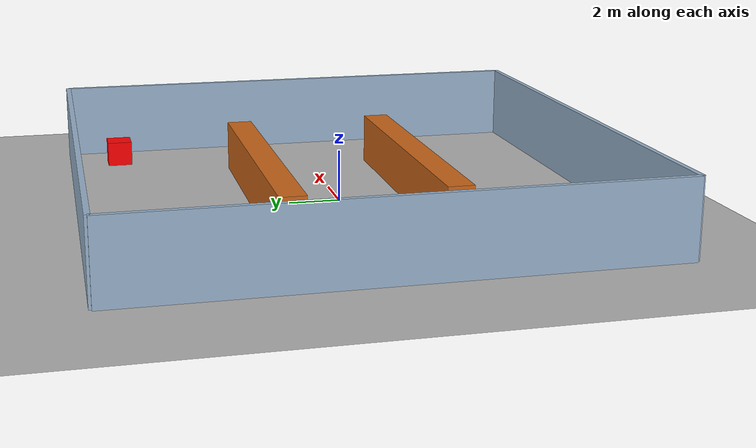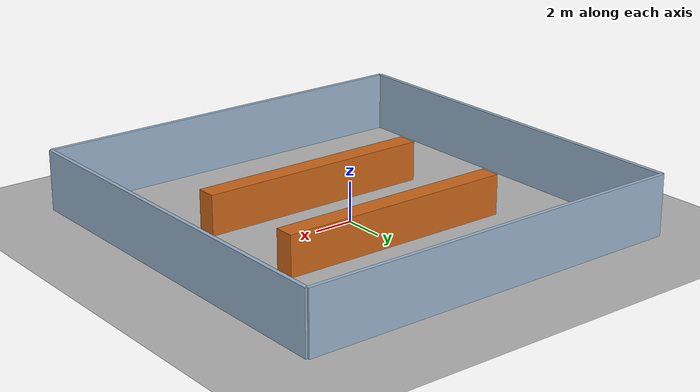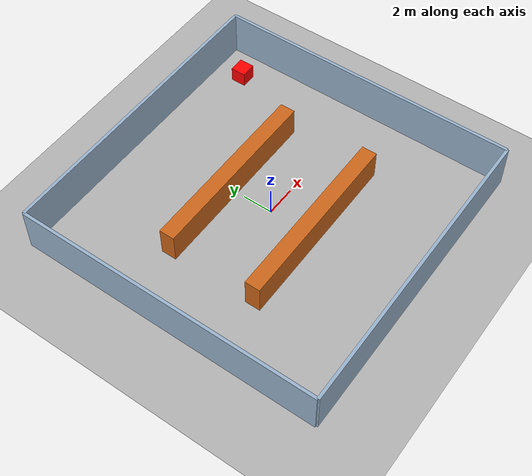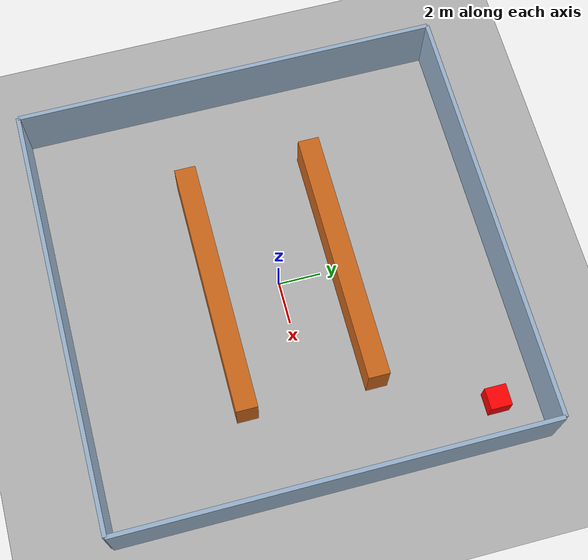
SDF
<?xml version="1.0" ?>
<sdf version="1.8">
  <world name="warehouse">
    <physics name="1ms" type="ignored">
      <max_step_size>0.001</max_step_size>
      <real_time_factor>1.0</real_time_factor>
    </physics>
    <plugin filename="gz-sim-physics-system" name="gz::sim::systems::Physics"></plugin>
    <plugin filename="gz-sim-user-commands-system" name="gz::sim::systems::UserCommands"></plugin>
    <plugin filename="gz-sim-scene-broadcaster-system" name="gz::sim::systems::SceneBroadcaster"></plugin>

    <plugin filename="gz-sim-sensors-system" name="gz::sim::systems::Sensors">
      <render_engine>ogre</render_engine>
    </plugin>

    <light type="directional" name="sun">
      <cast_shadows>true</cast_shadows>
      <pose>0 0 10 0 0 0</pose>
      <diffuse>0.8 0.8 0.8 1</diffuse>
      <specular>0.2 0.2 0.2 1</specular>
      <direction>-0.5 0.1 -0.9</direction>
    </light>

    <model name="ground_plane">
      <static>true</static>
      <link name="link">
        <collision name="collision"><geometry><plane><normal>0 0 1</normal><size>100 100</size></plane></geometry></collision>
        <visual name="visual">
          <geometry><plane><normal>0 0 1</normal><size>100 100</size></plane></geometry>
          <material>
            <ambient>0.7 0.7 0.7 1</ambient>
            <diffuse>0.7 0.7 0.7 1</diffuse>
          </material>
        </visual>
      </link>
    </model>

    <model name="walls">
      <static>true</static>
      <link name="wall_north">
        <pose>0 10 1.5 0 0 0</pose>
        <collision name="col"><geometry><box><size>20 0.2 3</size></box></geometry></collision>
        <visual name="vis">
          <geometry><box><size>20 0.2 3</size></box></geometry>
          <material><ambient>0.6 0.7 0.8 1</ambient><diffuse>0.6 0.7 0.8 1</diffuse></material>
        </visual>
      </link>
      <link name="wall_south">
        <pose>0 -10 1.5 0 0 0</pose>
        <collision name="col"><geometry><box><size>20 0.2 3</size></box></geometry></collision>
        <visual name="vis">
          <geometry><box><size>20 0.2 3</size></box></geometry>
          <material><ambient>0.6 0.7 0.8 1</ambient><diffuse>0.6 0.7 0.8 1</diffuse></material>
        </visual>
      </link>
      <link name="wall_east">
        <pose>10 0 1.5 0 0 0</pose>
        <collision name="col"><geometry><box><size>0.2 20 3</size></box></geometry></collision>
        <visual name="vis">
          <geometry><box><size>0.2 20 3</size></box></geometry>
          <material><ambient>0.6 0.7 0.8 1</ambient><diffuse>0.6 0.7 0.8 1</diffuse></material>
        </visual>
      </link>
      <link name="wall_west">
        <pose>-10 0 1.5 0 0 0</pose>
        <collision name="col"><geometry><box><size>0.2 20 3</size></box></geometry></collision>
        <visual name="vis">
          <geometry><box><size>0.2 20 3</size></box></geometry>
          <material><ambient>0.6 0.7 0.8 1</ambient><diffuse>0.6 0.7 0.8 1</diffuse></material>
        </visual>
      </link>
    </model>

    <model name="shelving_unit_1">
      <static>true</static>
      <pose>0 3 1 0 0 0</pose>
      <link name="link">
        <collision name="col"><geometry><box><size>12 1 2</size></box></geometry></collision>
        <visual name="vis">
          <geometry><box><size>12 1 2</size></box></geometry>
          <material>
            <ambient>0.8 0.4 0.1 1</ambient>
            <diffuse>0.8 0.4 0.1 1</diffuse>
          </material>
        </visual>
      </link>
    </model>

    <model name="shelving_unit_2">
      <static>true</static>
      <pose>0 -3 1 0 0 0</pose>
      <link name="link">
        <collision name="col"><geometry><box><size>12 1 2</size></box></geometry></collision>
        <visual name="vis">
          <geometry><box><size>12 1 2</size></box></geometry>
          <material>
            <ambient>0.8 0.4 0.1 1</ambient>
            <diffuse>0.8 0.4 0.1 1</diffuse>
          </material>
        </visual>
      </link>
    </model>

    <model name="red_target_box">
      <pose>8 8 0.5 0 0 0</pose>
      <static>true</static>
      <link name="link">
        <collision name="collision"><geometry><box><size>1 1 1</size></box></geometry></collision>
        <visual name="visual">
          <geometry><box><size>1 1 1</size></box></geometry>
          <material>
            <ambient>1 0 0 1</ambient>
            <diffuse>1 0 0 1</diffuse>
          </material>
        </visual>
      </link>
    </model>
  </world>
</sdf>
